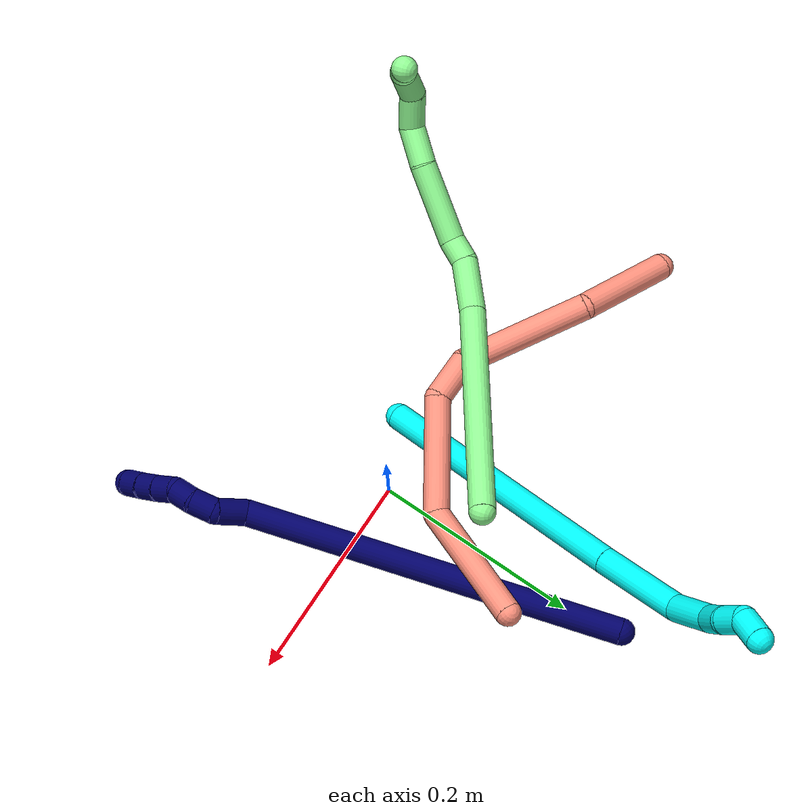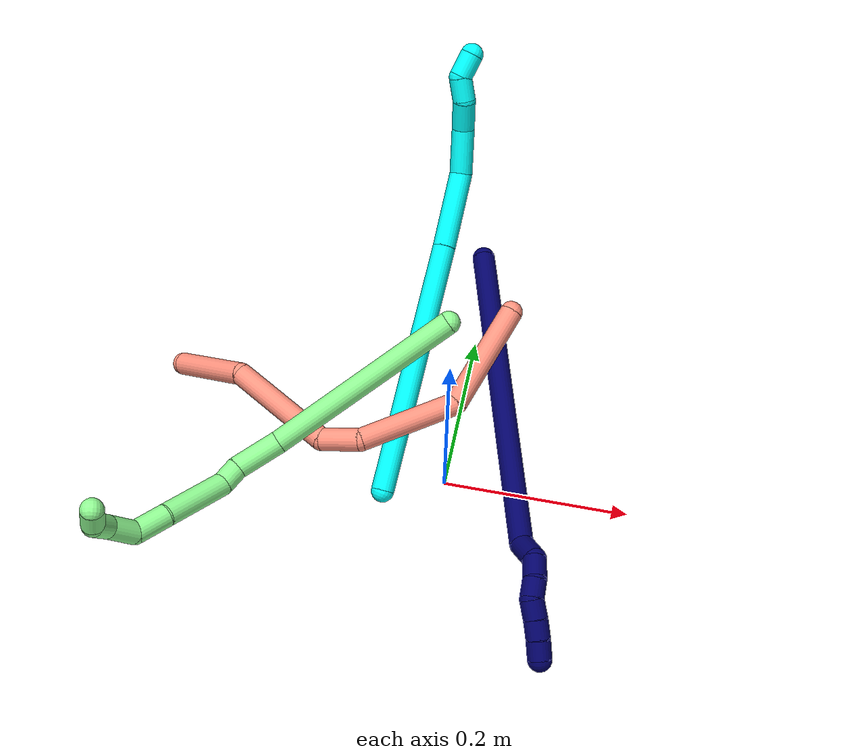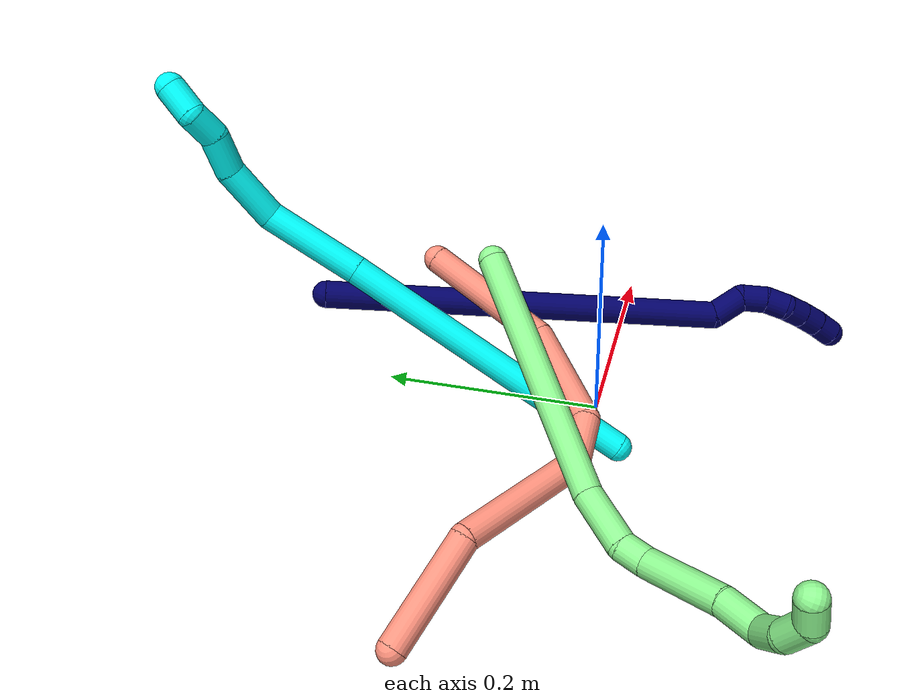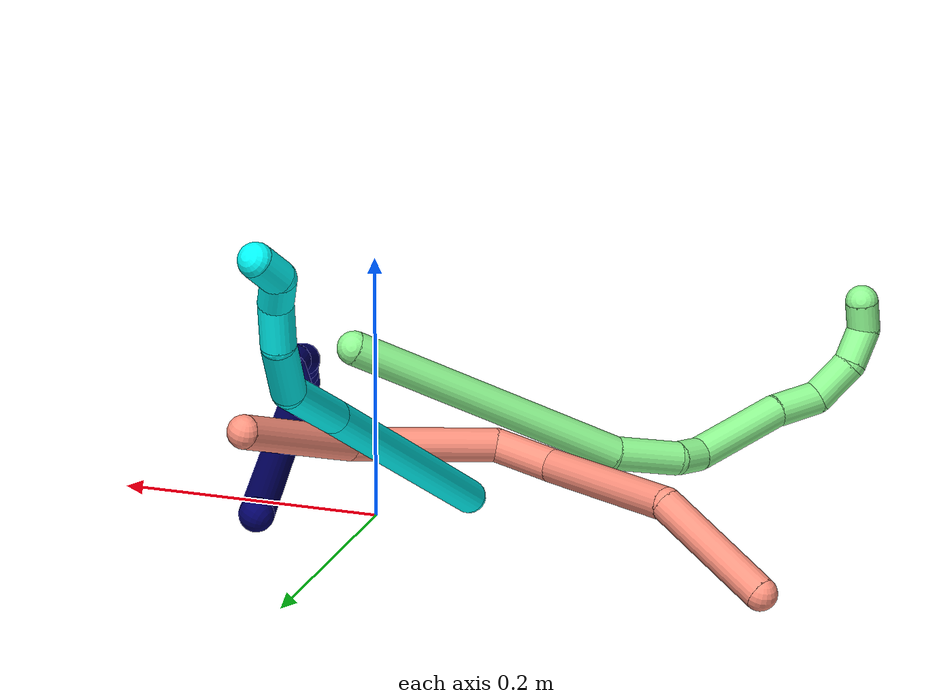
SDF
<sdf version="1.7">
 <world name="default">
  <model name="photoneo_s_sensor">
   <static>1</static>
   <pose>0 0 2 1.57079 1.57079 3.14159</pose>
   <link name="link">
    <inertial><mass>0.1</mass></inertial>
    <sensor name="sensor" type="depth">
     <update_rate>30</update_rate>
     <camera>
      <horizontal_fov>1.22</horizontal_fov>
      <image><width>1920</width><height>1200</height><format>B8G8R8</format></image>
      <clip><near>0.1</near><far>4</far></clip>
      <depth_camera><output>points</output></depth_camera>
     </camera>
     <plugin name="camera_plugin" filename="libgazebo_ros_depth_camera.so">
      <baseline>0.2</baseline>
      <alwaysOn>1</alwaysOn>
      <updateRate>0.0</updateRate>
      <cameraName>camera_ir</cameraName>
      <imageTopicName>/camera/color/image_raw</imageTopicName>
      <cameraInfoTopicName>/camera/color/camera_info</cameraInfoTopicName>
      <depthImageTopicName>/camera/depth/image_raw</depthImageTopicName>
      <depthImageCameraInfoTopicName>/camera/depth/camera_info</depthImageCameraInfoTopicName>
      <pointCloudTopicName>/camera/depth/points</pointCloudTopicName>
      <frameName>fr_optical</frameName>
      <pointCloudCutoff>0.1</pointCloudCutoff>
      <pointCloudCutoffMax>2.0</pointCloudCutoffMax>
      <distortionK1>0</distortionK1>
      <distortionK2>0</distortionK2>
      <distortionK3>0</distortionK3>
      <distortionT1>0</distortionT1>
      <distortionT2>0</distortionT2>
      <CxPrime>0</CxPrime>
      <Cx>0</Cx>
      <Cy>0</Cy>
      <focalLength>0</focalLength>
      <hackBaseline>0</hackBaseline>
     </plugin>
    </sensor>
   </link>
  </model>
  <model name="bin">
   <static>1</static>
   <link name="bottom">
    <collision name="collision-bottom">
     <pose>0 0 -0.01 0 -0 0</pose>
     <geometry><box><size>0.8 0.6 0.02</size></box></geometry>
     <surface>
      <friction><ode><mu>100</mu><mu2>100</mu2></ode></friction>
      <contact><collide_bitmask>65535</collide_bitmask></contact>
     </surface>
    </collision>
   </link>
   <link name="west_wall">
    <collision name="collision-west_wall">
     <pose>-0.41 0 0.1 0 -0 0</pose>
     <geometry><box><size>0.02 0.6 0.2</size></box></geometry>
     <surface>
      <friction><ode><mu>100</mu><mu2>100</mu2></ode></friction>
      <contact><collide_bitmask>65535</collide_bitmask></contact>
     </surface>
    </collision>
   </link>
   <link name="east_wall">
    <collision name="collision-east_wall">
     <pose>0.41 0 0.1 0 -0 0</pose>
     <geometry><box><size>0.02 0.6 0.2</size></box></geometry>
     <surface>
      <friction><ode><mu>100</mu><mu2>100</mu2></ode></friction>
      <contact><collide_bitmask>65535</collide_bitmask></contact>
     </surface>
    </collision>
   </link>
   <link name="south_wall">
    <collision name="collision-south_wall">
     <pose>0 -0.31 0.1 0 -0 0</pose>
     <geometry><box><size>0.8 0.02 0.2</size></box></geometry>
     <surface>
      <friction><ode><mu>100</mu><mu2>100</mu2></ode></friction>
      <contact><collide_bitmask>65535</collide_bitmask></contact>
     </surface>
    </collision>
   </link>
   <link name="north_wall">
    <collision name="collision-north_wall">
     <pose>0 0.31 0.1 0 -0 0</pose>
     <geometry><box><size>0.8 0.02 0.2</size></box></geometry>
     <surface>
      <friction><ode><mu>100</mu><mu2>100</mu2></ode></friction>
      <contact><collide_bitmask>65535</collide_bitmask></contact>
     </surface>
    </collision>
   </link>
  </model>
  <model name="3">
   <static>0</static>
   <link name="3">
    <collision name="collision-cylinder-e_1_1_4">
     <pose>0.001081 0.023082 0.136217 -0.167853 0.007823 -0.000658</pose>
     <geometry><cylinder><radius>0.0125</radius><length>0.276325</length></cylinder></geometry>
     <surface>
      <friction><ode><mu>1.16</mu><mu2>1.16</mu2><slip1>0</slip1><slip2>0</slip2></ode></friction>
      <contact><ode><kp>1e+06</kp><kd>1</kd><max_vel>0</max_vel><min_depth>0.001</min_depth></ode></contact>
     </surface>
    </collision>
    <visual name="visual-cylinder-e_1_1_4">
     <pose>0.001081 0.023082 0.136217 -0.167853 0.007823 -0.000658</pose>
     <geometry><cylinder><radius>0.0125</radius><length>0.276325</length></cylinder></geometry>
     <material><ambient>0.003922 1 0.996078 1</ambient></material>
    </visual>
    <collision name="collision-cylinder-e_2_4_5">
     <pose>0.003408 0.054255 0.31452 -0.189957 0.029061 -0.002769</pose>
     <geometry><cylinder><radius>0.0125</radius><length>0.085752</length></cylinder></geometry>
     <surface>
      <friction><ode><mu>1.16</mu><mu2>1.16</mu2><slip1>0</slip1><slip2>0</slip2></ode></friction>
      <contact><ode><kp>1e+06</kp><kd>1</kd><max_vel>0</max_vel><min_depth>0.001</min_depth></ode></contact>
     </surface>
    </collision>
    <visual name="visual-cylinder-e_2_4_5">
     <pose>0.003408 0.054255 0.31452 -0.189957 0.029061 -0.002769</pose>
     <geometry><cylinder><radius>0.0125</radius><length>0.085752</length></cylinder></geometry>
     <material><ambient>0.003922 1 0.996078 1</ambient></material>
    </visual>
    <collision name="collision-cylinder-e_3_5_6">
     <pose>-0.00579 0.070483 0.378477 -0.356143 -0.420816 0.076837</pose>
     <geometry><cylinder><radius>0.0125</radius><length>0.05113</length></cylinder></geometry>
     <surface>
      <friction><ode><mu>1.16</mu><mu2>1.16</mu2><slip1>0</slip1><slip2>0</slip2></ode></friction>
      <contact><ode><kp>1e+06</kp><kd>1</kd><max_vel>0</max_vel><min_depth>0.001</min_depth></ode></contact>
     </surface>
    </collision>
    <visual name="visual-cylinder-e_3_5_6">
     <pose>-0.00579 0.070483 0.378477 -0.356143 -0.420816 0.076837</pose>
     <geometry><cylinder><radius>0.0125</radius><length>0.05113</length></cylinder></geometry>
     <material><ambient>0.003922 1 0.996078 1</ambient></material>
    </visual>
    <collision name="collision-cylinder-e_4_6_7">
     <pose>-0.027916 0.083025 0.411656 -0.371492 -0.766363 0.151208</pose>
     <geometry><cylinder><radius>0.0125</radius><length>0.033691</length></cylinder></geometry>
     <surface>
      <friction><ode><mu>1.16</mu><mu2>1.16</mu2><slip1>0</slip1><slip2>0</slip2></ode></friction>
      <contact><ode><kp>1e+06</kp><kd>1</kd><max_vel>0</max_vel><min_depth>0.001</min_depth></ode></contact>
     </surface>
    </collision>
    <visual name="visual-cylinder-e_4_6_7">
     <pose>-0.027916 0.083025 0.411656 -0.371492 -0.766363 0.151208</pose>
     <geometry><cylinder><radius>0.0125</radius><length>0.033691</length></cylinder></geometry>
     <material><ambient>0.003922 1 0.996078 1</ambient></material>
    </visual>
    <collision name="collision-cylinder-e_5_7_8">
     <pose>-0.045348 0.093932 0.432697 -0.588923 -0.456568 0.140691</pose>
     <geometry><cylinder><radius>0.0125</radius><length>0.026081</length></cylinder></geometry>
     <surface>
      <friction><ode><mu>1.16</mu><mu2>1.16</mu2><slip1>0</slip1><slip2>0</slip2></ode></friction>
      <contact><ode><kp>1e+06</kp><kd>1</kd><max_vel>0</max_vel><min_depth>0.001</min_depth></ode></contact>
     </surface>
    </collision>
    <visual name="visual-cylinder-e_5_7_8">
     <pose>-0.045348 0.093932 0.432697 -0.588923 -0.456568 0.140691</pose>
     <geometry><cylinder><radius>0.0125</radius><length>0.026081</length></cylinder></geometry>
     <material><ambient>0.003922 1 0.996078 1</ambient></material>
    </visual>
    <collision name="collision-cylinder-e_6_8_2">
     <pose>-0.053761 0.099402 0.455635 0.077965 -0.19842 -0.007764</pose>
     <geometry><cylinder><radius>0.0125</radius><length>0.027021</length></cylinder></geometry>
     <surface>
      <friction><ode><mu>1.16</mu><mu2>1.16</mu2><slip1>0</slip1><slip2>0</slip2></ode></friction>
      <contact><ode><kp>1e+06</kp><kd>1</kd><max_vel>0</max_vel><min_depth>0.001</min_depth></ode></contact>
     </surface>
    </collision>
    <visual name="visual-cylinder-e_6_8_2">
     <pose>-0.053761 0.099402 0.455635 0.077965 -0.19842 -0.007764</pose>
     <geometry><cylinder><radius>0.0125</radius><length>0.027021</length></cylinder></geometry>
     <material><ambient>0.003922 1 0.996078 1</ambient></material>
    </visual>
    <collision name="collision-sphere-2">
     <pose>-0.056424 0.09837 0.46884 0 -0 0</pose>
     <geometry><sphere><radius>0.0125</radius></sphere></geometry>
     <surface>
      <friction><ode><mu>1.16</mu><mu2>1.16</mu2><slip1>0</slip1><slip2>0</slip2></ode></friction>
      <contact><ode><kp>1e+06</kp><kd>1</kd><max_vel>0</max_vel><min_depth>0.001</min_depth></ode></contact>
     </surface>
    </collision>
    <visual name="visual-sphere-2">
     <pose>-0.056424 0.09837 0.46884 0 -0 0</pose>
     <geometry><sphere><radius>0.0125</radius></sphere></geometry>
     <material><ambient>0.003922 1 0.996078 1</ambient></material>
    </visual>
    <collision name="collision-sphere-4">
     <pose>0.002162 0.046163 0.272434 0 -0 0</pose>
     <geometry><sphere><radius>0.0125</radius></sphere></geometry>
     <surface>
      <friction><ode><mu>1.16</mu><mu2>1.16</mu2><slip1>0</slip1><slip2>0</slip2></ode></friction>
      <contact><ode><kp>1e+06</kp><kd>1</kd><max_vel>0</max_vel><min_depth>0.001</min_depth></ode></contact>
     </surface>
    </collision>
    <visual name="visual-sphere-4">
     <pose>0.002162 0.046163 0.272434 0 -0 0</pose>
     <geometry><sphere><radius>0.0125</radius></sphere></geometry>
     <material><ambient>0.003922 1 0.996078 1</ambient></material>
    </visual>
    <collision name="collision-sphere-1">
     <geometry><sphere><radius>0.0125</radius></sphere></geometry>
     <surface>
      <friction><ode><mu>1.16</mu><mu2>1.16</mu2><slip1>0</slip1><slip2>0</slip2></ode></friction>
      <contact><ode><kp>1e+06</kp><kd>1</kd><max_vel>0</max_vel><min_depth>0.001</min_depth></ode></contact>
     </surface>
    </collision>
    <visual name="visual-sphere-1">
     <geometry><sphere><radius>0.0125</radius></sphere></geometry>
     <material><ambient>0.003922 1 0.996078 1</ambient></material>
    </visual>
    <collision name="collision-sphere-8">
     <pose>-0.051098 0.100434 0.44243 0 -0 0</pose>
     <geometry><sphere><radius>0.0125</radius></sphere></geometry>
     <surface>
      <friction><ode><mu>1.16</mu><mu2>1.16</mu2><slip1>0</slip1><slip2>0</slip2></ode></friction>
      <contact><ode><kp>1e+06</kp><kd>1</kd><max_vel>0</max_vel><min_depth>0.001</min_depth></ode></contact>
     </surface>
    </collision>
    <visual name="visual-sphere-8">
     <pose>-0.051098 0.100434 0.44243 0 -0 0</pose>
     <geometry><sphere><radius>0.0125</radius></sphere></geometry>
     <material><ambient>0.003922 1 0.996078 1</ambient></material>
    </visual>
    <collision name="collision-sphere-5">
     <pose>0.004653 0.062348 0.356607 0 -0 0</pose>
     <geometry><sphere><radius>0.0125</radius></sphere></geometry>
     <surface>
      <friction><ode><mu>1.16</mu><mu2>1.16</mu2><slip1>0</slip1><slip2>0</slip2></ode></friction>
      <contact><ode><kp>1e+06</kp><kd>1</kd><max_vel>0</max_vel><min_depth>0.001</min_depth></ode></contact>
     </surface>
    </collision>
    <visual name="visual-sphere-5">
     <pose>0.004653 0.062348 0.356607 0 -0 0</pose>
     <geometry><sphere><radius>0.0125</radius></sphere></geometry>
     <material><ambient>0.003922 1 0.996078 1</ambient></material>
    </visual>
    <collision name="collision-sphere-6">
     <pose>-0.016233 0.078619 0.400347 0 -0 0</pose>
     <geometry><sphere><radius>0.0125</radius></sphere></geometry>
     <surface>
      <friction><ode><mu>1.16</mu><mu2>1.16</mu2><slip1>0</slip1><slip2>0</slip2></ode></friction>
      <contact><ode><kp>1e+06</kp><kd>1</kd><max_vel>0</max_vel><min_depth>0.001</min_depth></ode></contact>
     </surface>
    </collision>
    <visual name="visual-sphere-6">
     <pose>-0.016233 0.078619 0.400347 0 -0 0</pose>
     <geometry><sphere><radius>0.0125</radius></sphere></geometry>
     <material><ambient>0.003922 1 0.996078 1</ambient></material>
    </visual>
    <collision name="collision-sphere-7">
     <pose>-0.039599 0.08743 0.422964 0 -0 0</pose>
     <geometry><sphere><radius>0.0125</radius></sphere></geometry>
     <surface>
      <friction><ode><mu>1.16</mu><mu2>1.16</mu2><slip1>0</slip1><slip2>0</slip2></ode></friction>
      <contact><ode><kp>1e+06</kp><kd>1</kd><max_vel>0</max_vel><min_depth>0.001</min_depth></ode></contact>
     </surface>
    </collision>
    <visual name="visual-sphere-7">
     <pose>-0.039599 0.08743 0.422964 0 -0 0</pose>
     <geometry><sphere><radius>0.0125</radius></sphere></geometry>
     <material><ambient>0.003922 1 0.996078 1</ambient></material>
    </visual>
    <inertial>
     <pose>-0.006562 0.045135 0.242857 0 -0 0</pose>
     <mass>0.5</mass>
     <inertia>
      <ixx>0.001841</ixx>
      <ixy>0</ixy>
      <ixz>0</ixz>
      <iyy>0.001829</iyy>
      <iyz>0</iyz>
      <izz>-0.000281</izz>
     </inertia>
    </inertial>
   </link>
   <pose>-0.0625 -0.030805 0.011488 0.34635 1.02251 1.6962</pose>
  </model>
  <model name="7">
   <static>0</static>
   <link name="7">
    <collision name="collision-cylinder-e_1_1_4">
     <pose>-0.041882 -0.156491 0.084164 1.07736 -0.231481 -0.138739</pose>
     <geometry><cylinder><radius>0.0125</radius><length>0.365115</length></cylinder></geometry>
     <surface>
      <friction><ode><mu>1.16</mu><mu2>1.16</mu2><slip1>0</slip1><slip2>0</slip2></ode></friction>
      <contact><ode><kp>1e+06</kp><kd>1</kd><max_vel>0</max_vel><min_depth>0.001</min_depth></ode></contact>
     </surface>
    </collision>
    <visual name="visual-cylinder-e_1_1_4">
     <pose>-0.041882 -0.156491 0.084164 1.07736 -0.231481 -0.138739</pose>
     <geometry><cylinder><radius>0.0125</radius><length>0.365115</length></cylinder></geometry>
     <material><ambient>0.003922 0 0.403922 1</ambient></material>
    </visual>
    <collision name="collision-cylinder-e_2_4_5">
     <pose>-0.090574 -0.319083 0.180748 0.456545 -0.457333 -0.108035</pose>
     <geometry><cylinder><radius>0.0125</radius><length>0.030845</length></cylinder></geometry>
     <surface>
      <friction><ode><mu>1.16</mu><mu2>1.16</mu2><slip1>0</slip1><slip2>0</slip2></ode></friction>
      <contact><ode><kp>1e+06</kp><kd>1</kd><max_vel>0</max_vel><min_depth>0.001</min_depth></ode></contact>
     </surface>
    </collision>
    <visual name="visual-cylinder-e_2_4_5">
     <pose>-0.090574 -0.319083 0.180748 0.456545 -0.457333 -0.108035</pose>
     <geometry><cylinder><radius>0.0125</radius><length>0.030845</length></cylinder></geometry>
     <material><ambient>0.003922 0 0.403922 1</ambient></material>
    </visual>
    <collision name="collision-cylinder-e_3_5_6">
     <pose>-0.101154 -0.335247 0.197639 1.15276 -0.329811 -0.215507</pose>
     <geometry><cylinder><radius>0.0125</radius><length>0.023278</length></cylinder></geometry>
     <surface>
      <friction><ode><mu>1.16</mu><mu2>1.16</mu2><slip1>0</slip1><slip2>0</slip2></ode></friction>
      <contact><ode><kp>1e+06</kp><kd>1</kd><max_vel>0</max_vel><min_depth>0.001</min_depth></ode></contact>
     </surface>
    </collision>
    <visual name="visual-cylinder-e_3_5_6">
     <pose>-0.101154 -0.335247 0.197639 1.15276 -0.329811 -0.215507</pose>
     <geometry><cylinder><radius>0.0125</radius><length>0.023278</length></cylinder></geometry>
     <material><ambient>0.003922 0 0.403922 1</ambient></material>
    </visual>
    <collision name="collision-cylinder-e_4_6_7">
     <pose>-0.107024 -0.355217 0.203835 1.39833 -0.205976 -0.173376</pose>
     <geometry><cylinder><radius>0.0125</radius><length>0.020546</length></cylinder></geometry>
     <surface>
      <friction><ode><mu>1.16</mu><mu2>1.16</mu2><slip1>0</slip1><slip2>0</slip2></ode></friction>
      <contact><ode><kp>1e+06</kp><kd>1</kd><max_vel>0</max_vel><min_depth>0.001</min_depth></ode></contact>
     </surface>
    </collision>
    <visual name="visual-cylinder-e_4_6_7">
     <pose>-0.107024 -0.355217 0.203835 1.39833 -0.205976 -0.173376</pose>
     <geometry><cylinder><radius>0.0125</radius><length>0.020546</length></cylinder></geometry>
     <material><ambient>0.003922 0 0.403922 1</ambient></material>
    </visual>
    <collision name="collision-cylinder-e_5_7_8">
     <pose>-0.106674 -0.374288 0.20878 1.23297 0.247175 0.175597</pose>
     <geometry><cylinder><radius>0.0125</radius><length>0.020035</length></cylinder></geometry>
     <surface>
      <friction><ode><mu>1.16</mu><mu2>1.16</mu2><slip1>0</slip1><slip2>0</slip2></ode></friction>
      <contact><ode><kp>1e+06</kp><kd>1</kd><max_vel>0</max_vel><min_depth>0.001</min_depth></ode></contact>
     </surface>
    </collision>
    <visual name="visual-cylinder-e_5_7_8">
     <pose>-0.106674 -0.374288 0.20878 1.23297 0.247175 0.175597</pose>
     <geometry><cylinder><radius>0.0125</radius><length>0.020035</length></cylinder></geometry>
     <material><ambient>0.003922 0 0.403922 1</ambient></material>
    </visual>
    <collision name="collision-cylinder-e_6_8_9">
     <pose>-0.101836 -0.392845 0.214513 1.30926 0.240819 0.185204</pose>
     <geometry><cylinder><radius>0.0125</radius><length>0.020025</length></cylinder></geometry>
     <surface>
      <friction><ode><mu>1.16</mu><mu2>1.16</mu2><slip1>0</slip1><slip2>0</slip2></ode></friction>
      <contact><ode><kp>1e+06</kp><kd>1</kd><max_vel>0</max_vel><min_depth>0.001</min_depth></ode></contact>
     </surface>
    </collision>
    <visual name="visual-cylinder-e_6_8_9">
     <pose>-0.101836 -0.392845 0.214513 1.30926 0.240819 0.185204</pose>
     <geometry><cylinder><radius>0.0125</radius><length>0.020025</length></cylinder></geometry>
     <material><ambient>0.003922 0 0.403922 1</ambient></material>
    </visual>
    <collision name="collision-cylinder-e_7_9_2">
     <pose>-0.096709 -0.411774 0.218796 1.38746 0.275218 0.229323</pose>
     <geometry><cylinder><radius>0.0125</radius><length>0.020156</length></cylinder></geometry>
     <surface>
      <friction><ode><mu>1.16</mu><mu2>1.16</mu2><slip1>0</slip1><slip2>0</slip2></ode></friction>
      <contact><ode><kp>1e+06</kp><kd>1</kd><max_vel>0</max_vel><min_depth>0.001</min_depth></ode></contact>
     </surface>
    </collision>
    <visual name="visual-cylinder-e_7_9_2">
     <pose>-0.096709 -0.411774 0.218796 1.38746 0.275218 0.229323</pose>
     <geometry><cylinder><radius>0.0125</radius><length>0.020156</length></cylinder></geometry>
     <material><ambient>0.003922 0 0.403922 1</ambient></material>
    </visual>
    <collision name="collision-sphere-2">
     <pose>-0.09397 -0.42131 0.220564 0 -0 0</pose>
     <geometry><sphere><radius>0.0125</radius></sphere></geometry>
     <surface>
      <friction><ode><mu>1.16</mu><mu2>1.16</mu2><slip1>0</slip1><slip2>0</slip2></ode></friction>
      <contact><ode><kp>1e+06</kp><kd>1</kd><max_vel>0</max_vel><min_depth>0.001</min_depth></ode></contact>
     </surface>
    </collision>
    <visual name="visual-sphere-2">
     <pose>-0.09397 -0.42131 0.220564 0 -0 0</pose>
     <geometry><sphere><radius>0.0125</radius></sphere></geometry>
     <material><ambient>0.003922 0 0.403922 1</ambient></material>
    </visual>
    <collision name="collision-sphere-9">
     <pose>-0.099448 -0.402237 0.217027 0 -0 0</pose>
     <geometry><sphere><radius>0.0125</radius></sphere></geometry>
     <surface>
      <friction><ode><mu>1.16</mu><mu2>1.16</mu2><slip1>0</slip1><slip2>0</slip2></ode></friction>
      <contact><ode><kp>1e+06</kp><kd>1</kd><max_vel>0</max_vel><min_depth>0.001</min_depth></ode></contact>
     </surface>
    </collision>
    <visual name="visual-sphere-9">
     <pose>-0.099448 -0.402237 0.217027 0 -0 0</pose>
     <geometry><sphere><radius>0.0125</radius></sphere></geometry>
     <material><ambient>0.003922 0 0.403922 1</ambient></material>
    </visual>
    <collision name="collision-sphere-4">
     <pose>-0.083764 -0.312983 0.168328 0 -0 0</pose>
     <geometry><sphere><radius>0.0125</radius></sphere></geometry>
     <surface>
      <friction><ode><mu>1.16</mu><mu2>1.16</mu2><slip1>0</slip1><slip2>0</slip2></ode></friction>
      <contact><ode><kp>1e+06</kp><kd>1</kd><max_vel>0</max_vel><min_depth>0.001</min_depth></ode></contact>
     </surface>
    </collision>
    <visual name="visual-sphere-4">
     <pose>-0.083764 -0.312983 0.168328 0 -0 0</pose>
     <geometry><sphere><radius>0.0125</radius></sphere></geometry>
     <material><ambient>0.003922 0 0.403922 1</ambient></material>
    </visual>
    <collision name="collision-sphere-1">
     <geometry><sphere><radius>0.0125</radius></sphere></geometry>
     <surface>
      <friction><ode><mu>1.16</mu><mu2>1.16</mu2><slip1>0</slip1><slip2>0</slip2></ode></friction>
      <contact><ode><kp>1e+06</kp><kd>1</kd><max_vel>0</max_vel><min_depth>0.001</min_depth></ode></contact>
     </surface>
    </collision>
    <visual name="visual-sphere-1">
     <geometry><sphere><radius>0.0125</radius></sphere></geometry>
     <material><ambient>0.003922 0 0.403922 1</ambient></material>
    </visual>
    <collision name="collision-sphere-8">
     <pose>-0.104224 -0.383452 0.211999 0 -0 0</pose>
     <geometry><sphere><radius>0.0125</radius></sphere></geometry>
     <surface>
      <friction><ode><mu>1.16</mu><mu2>1.16</mu2><slip1>0</slip1><slip2>0</slip2></ode></friction>
      <contact><ode><kp>1e+06</kp><kd>1</kd><max_vel>0</max_vel><min_depth>0.001</min_depth></ode></contact>
     </surface>
    </collision>
    <visual name="visual-sphere-8">
     <pose>-0.104224 -0.383452 0.211999 0 -0 0</pose>
     <geometry><sphere><radius>0.0125</radius></sphere></geometry>
     <material><ambient>0.003922 0 0.403922 1</ambient></material>
    </visual>
    <collision name="collision-sphere-5">
     <pose>-0.097384 -0.325183 0.193168 0 -0 0</pose>
     <geometry><sphere><radius>0.0125</radius></sphere></geometry>
     <surface>
      <friction><ode><mu>1.16</mu><mu2>1.16</mu2><slip1>0</slip1><slip2>0</slip2></ode></friction>
      <contact><ode><kp>1e+06</kp><kd>1</kd><max_vel>0</max_vel><min_depth>0.001</min_depth></ode></contact>
     </surface>
    </collision>
    <visual name="visual-sphere-5">
     <pose>-0.097384 -0.325183 0.193168 0 -0 0</pose>
     <geometry><sphere><radius>0.0125</radius></sphere></geometry>
     <material><ambient>0.003922 0 0.403922 1</ambient></material>
    </visual>
    <collision name="collision-sphere-6">
     <pose>-0.104923 -0.345311 0.202109 0 -0 0</pose>
     <geometry><sphere><radius>0.0125</radius></sphere></geometry>
     <surface>
      <friction><ode><mu>1.16</mu><mu2>1.16</mu2><slip1>0</slip1><slip2>0</slip2></ode></friction>
      <contact><ode><kp>1e+06</kp><kd>1</kd><max_vel>0</max_vel><min_depth>0.001</min_depth></ode></contact>
     </surface>
    </collision>
    <visual name="visual-sphere-6">
     <pose>-0.104923 -0.345311 0.202109 0 -0 0</pose>
     <geometry><sphere><radius>0.0125</radius></sphere></geometry>
     <material><ambient>0.003922 0 0.403922 1</ambient></material>
    </visual>
    <collision name="collision-sphere-7">
     <pose>-0.109125 -0.365124 0.205561 0 -0 0</pose>
     <geometry><sphere><radius>0.0125</radius></sphere></geometry>
     <surface>
      <friction><ode><mu>1.16</mu><mu2>1.16</mu2><slip1>0</slip1><slip2>0</slip2></ode></friction>
      <contact><ode><kp>1e+06</kp><kd>1</kd><max_vel>0</max_vel><min_depth>0.001</min_depth></ode></contact>
     </surface>
    </collision>
    <visual name="visual-sphere-7">
     <pose>-0.109125 -0.365124 0.205561 0 -0 0</pose>
     <geometry><sphere><radius>0.0125</radius></sphere></geometry>
     <material><ambient>0.003922 0 0.403922 1</ambient></material>
    </visual>
    <inertial>
     <pose>-0.05753 -0.211494 0.115964 0 -0 0</pose>
     <mass>0.5</mass>
     <inertia>
      <ixx>0.003379</ixx>
      <ixy>0</ixy>
      <ixz>0</ixz>
      <iyy>0.001448</iyy>
      <iyz>0</iyz>
      <izz>0.00445</izz>
     </inertia>
    </inertial>
   </link>
   <pose>-0.003797 0.254913 0.091086 0.978555 0.896804 0.803215</pose>
  </model>
  <model name="13">
   <static>0</static>
   <link name="13">
    <collision name="collision-cylinder-e_1_1_4">
     <pose>-0.091421 0.025158 -0.058101 -2.73296 -0.965088 2.38826</pose>
     <geometry><cylinder><radius>0.0125</radius><length>0.222409</length></cylinder></geometry>
     <surface>
      <friction><ode><mu>1.16</mu><mu2>1.16</mu2><slip1>0</slip1><slip2>0</slip2></ode></friction>
      <contact><ode><kp>1e+06</kp><kd>1</kd><max_vel>0</max_vel><min_depth>0.001</min_depth></ode></contact>
     </surface>
    </collision>
    <visual name="visual-cylinder-e_1_1_4">
     <pose>-0.091421 0.025158 -0.058101 -2.73296 -0.965088 2.38826</pose>
     <geometry><cylinder><radius>0.0125</radius><length>0.222409</length></cylinder></geometry>
     <material><ambient>0.564706 0.984314 0.572549 1</ambient></material>
    </visual>
    <collision name="collision-cylinder-e_2_4_5">
     <pose>-0.20468 0.049191 -0.130638 3.06378 -0.985264 -2.99681</pose>
     <geometry><cylinder><radius>0.0125</radius><length>0.052405</length></cylinder></geometry>
     <surface>
      <friction><ode><mu>1.16</mu><mu2>1.16</mu2><slip1>0</slip1><slip2>0</slip2></ode></friction>
      <contact><ode><kp>1e+06</kp><kd>1</kd><max_vel>0</max_vel><min_depth>0.001</min_depth></ode></contact>
     </surface>
    </collision>
    <visual name="visual-cylinder-e_2_4_5">
     <pose>-0.20468 0.049191 -0.130638 3.06378 -0.985264 -2.99681</pose>
     <geometry><cylinder><radius>0.0125</radius><length>0.052405</length></cylinder></geometry>
     <material><ambient>0.564706 0.984314 0.572549 1</ambient></material>
    </visual>
    <collision name="collision-cylinder-e_3_5_6">
     <pose>-0.233448 0.045269 -0.154258 2.84605 -0.625347 -2.27855</pose>
     <geometry><cylinder><radius>0.0125</radius><length>0.023678</length></cylinder></geometry>
     <surface>
      <friction><ode><mu>1.16</mu><mu2>1.16</mu2><slip1>0</slip1><slip2>0</slip2></ode></friction>
      <contact><ode><kp>1e+06</kp><kd>1</kd><max_vel>0</max_vel><min_depth>0.001</min_depth></ode></contact>
     </surface>
    </collision>
    <visual name="visual-cylinder-e_3_5_6">
     <pose>-0.233448 0.045269 -0.154258 2.84605 -0.625347 -2.27855</pose>
     <geometry><cylinder><radius>0.0125</radius><length>0.023678</length></cylinder></geometry>
     <material><ambient>0.564706 0.984314 0.572549 1</ambient></material>
    </visual>
    <collision name="collision-cylinder-e_4_6_7">
     <pose>-0.265586 0.022458 -0.184009 2.36982 -0.720694 -1.4956</pose>
     <geometry><cylinder><radius>0.0125</radius><length>0.076397</length></cylinder></geometry>
     <surface>
      <friction><ode><mu>1.16</mu><mu2>1.16</mu2><slip1>0</slip1><slip2>0</slip2></ode></friction>
      <contact><ode><kp>1e+06</kp><kd>1</kd><max_vel>0</max_vel><min_depth>0.001</min_depth></ode></contact>
     </surface>
    </collision>
    <visual name="visual-cylinder-e_4_6_7">
     <pose>-0.265586 0.022458 -0.184009 2.36982 -0.720694 -1.4956</pose>
     <geometry><cylinder><radius>0.0125</radius><length>0.076397</length></cylinder></geometry>
     <material><ambient>0.564706 0.984314 0.572549 1</ambient></material>
    </visual>
    <collision name="collision-cylinder-e_5_7_8">
     <pose>-0.305044 -0.004796 -0.215048 2.53675 -0.841783 -1.92422</pose>
     <geometry><cylinder><radius>0.0125</radius><length>0.038214</length></cylinder></geometry>
     <surface>
      <friction><ode><mu>1.16</mu><mu2>1.16</mu2><slip1>0</slip1><slip2>0</slip2></ode></friction>
      <contact><ode><kp>1e+06</kp><kd>1</kd><max_vel>0</max_vel><min_depth>0.001</min_depth></ode></contact>
     </surface>
    </collision>
    <visual name="visual-cylinder-e_5_7_8">
     <pose>-0.305044 -0.004796 -0.215048 2.53675 -0.841783 -1.92422</pose>
     <geometry><cylinder><radius>0.0125</radius><length>0.038214</length></cylinder></geometry>
     <material><ambient>0.564706 0.984314 0.572549 1</ambient></material>
    </visual>
    <collision name="collision-cylinder-e_6_8_9">
     <pose>-0.33045 -0.025819 -0.225031 1.5355 -0.680017 -0.658121</pose>
     <geometry><cylinder><radius>0.0125</radius><length>0.035482</length></cylinder></geometry>
     <surface>
      <friction><ode><mu>1.16</mu><mu2>1.16</mu2><slip1>0</slip1><slip2>0</slip2></ode></friction>
      <contact><ode><kp>1e+06</kp><kd>1</kd><max_vel>0</max_vel><min_depth>0.001</min_depth></ode></contact>
     </surface>
    </collision>
    <visual name="visual-cylinder-e_6_8_9">
     <pose>-0.33045 -0.025819 -0.225031 1.5355 -0.680017 -0.658121</pose>
     <geometry><cylinder><radius>0.0125</radius><length>0.035482</length></cylinder></geometry>
     <material><ambient>0.564706 0.984314 0.572549 1</ambient></material>
    </visual>
    <collision name="collision-cylinder-e_7_9_10">
     <pose>-0.345472 -0.053315 -0.226128 1.68581 -0.273174 -0.306058</pose>
     <geometry><cylinder><radius>0.0125</radius><length>0.028665</length></cylinder></geometry>
     <surface>
      <friction><ode><mu>1.16</mu><mu2>1.16</mu2><slip1>0</slip1><slip2>0</slip2></ode></friction>
      <contact><ode><kp>1e+06</kp><kd>1</kd><max_vel>0</max_vel><min_depth>0.001</min_depth></ode></contact>
     </surface>
    </collision>
    <visual name="visual-cylinder-e_7_9_10">
     <pose>-0.345472 -0.053315 -0.226128 1.68581 -0.273174 -0.306058</pose>
     <geometry><cylinder><radius>0.0125</radius><length>0.028665</length></cylinder></geometry>
     <material><ambient>0.564706 0.984314 0.572549 1</ambient></material>
    </visual>
    <collision name="collision-cylinder-e_8_10_2">
     <pose>-0.347847 -0.076925 -0.222312 1.07153 0.13153 0.07816</pose>
     <geometry><cylinder><radius>0.0125</radius><length>0.02275</length></cylinder></geometry>
     <surface>
      <friction><ode><mu>1.16</mu><mu2>1.16</mu2><slip1>0</slip1><slip2>0</slip2></ode></friction>
      <contact><ode><kp>1e+06</kp><kd>1</kd><max_vel>0</max_vel><min_depth>0.001</min_depth></ode></contact>
     </surface>
    </collision>
    <visual name="visual-cylinder-e_8_10_2">
     <pose>-0.347847 -0.076925 -0.222312 1.07153 0.13153 0.07816</pose>
     <geometry><cylinder><radius>0.0125</radius><length>0.02275</length></cylinder></geometry>
     <material><ambient>0.564706 0.984314 0.572549 1</ambient></material>
    </visual>
    <collision name="collision-sphere-2">
     <pose>-0.346355 -0.086825 -0.216913 0 -0 0</pose>
     <geometry><sphere><radius>0.0125</radius></sphere></geometry>
     <surface>
      <friction><ode><mu>1.16</mu><mu2>1.16</mu2><slip1>0</slip1><slip2>0</slip2></ode></friction>
      <contact><ode><kp>1e+06</kp><kd>1</kd><max_vel>0</max_vel><min_depth>0.001</min_depth></ode></contact>
     </surface>
    </collision>
    <visual name="visual-sphere-2">
     <pose>-0.346355 -0.086825 -0.216913 0 -0 0</pose>
     <geometry><sphere><radius>0.0125</radius></sphere></geometry>
     <material><ambient>0.564706 0.984314 0.572549 1</ambient></material>
    </visual>
    <collision name="collision-sphere-10">
     <pose>-0.349339 -0.067024 -0.227712 0 -0 0</pose>
     <geometry><sphere><radius>0.0125</radius></sphere></geometry>
     <surface>
      <friction><ode><mu>1.16</mu><mu2>1.16</mu2><slip1>0</slip1><slip2>0</slip2></ode></friction>
      <contact><ode><kp>1e+06</kp><kd>1</kd><max_vel>0</max_vel><min_depth>0.001</min_depth></ode></contact>
     </surface>
    </collision>
    <visual name="visual-sphere-10">
     <pose>-0.349339 -0.067024 -0.227712 0 -0 0</pose>
     <geometry><sphere><radius>0.0125</radius></sphere></geometry>
     <material><ambient>0.564706 0.984314 0.572549 1</ambient></material>
    </visual>
    <collision name="collision-sphere-9">
     <pose>-0.341606 -0.039605 -0.224544 0 -0 0</pose>
     <geometry><sphere><radius>0.0125</radius></sphere></geometry>
     <surface>
      <friction><ode><mu>1.16</mu><mu2>1.16</mu2><slip1>0</slip1><slip2>0</slip2></ode></friction>
      <contact><ode><kp>1e+06</kp><kd>1</kd><max_vel>0</max_vel><min_depth>0.001</min_depth></ode></contact>
     </surface>
    </collision>
    <visual name="visual-sphere-9">
     <pose>-0.341606 -0.039605 -0.224544 0 -0 0</pose>
     <geometry><sphere><radius>0.0125</radius></sphere></geometry>
     <material><ambient>0.564706 0.984314 0.572549 1</ambient></material>
    </visual>
    <collision name="collision-sphere-4">
     <pose>-0.182842 0.050316 -0.116201 0 -0 0</pose>
     <geometry><sphere><radius>0.0125</radius></sphere></geometry>
     <surface>
      <friction><ode><mu>1.16</mu><mu2>1.16</mu2><slip1>0</slip1><slip2>0</slip2></ode></friction>
      <contact><ode><kp>1e+06</kp><kd>1</kd><max_vel>0</max_vel><min_depth>0.001</min_depth></ode></contact>
     </surface>
    </collision>
    <visual name="visual-sphere-4">
     <pose>-0.182842 0.050316 -0.116201 0 -0 0</pose>
     <geometry><sphere><radius>0.0125</radius></sphere></geometry>
     <material><ambient>0.564706 0.984314 0.572549 1</ambient></material>
    </visual>
    <collision name="collision-sphere-1">
     <geometry><sphere><radius>0.0125</radius></sphere></geometry>
     <surface>
      <friction><ode><mu>1.16</mu><mu2>1.16</mu2><slip1>0</slip1><slip2>0</slip2></ode></friction>
      <contact><ode><kp>1e+06</kp><kd>1</kd><max_vel>0</max_vel><min_depth>0.001</min_depth></ode></contact>
     </surface>
    </collision>
    <visual name="visual-sphere-1">
     <geometry><sphere><radius>0.0125</radius></sphere></geometry>
     <material><ambient>0.564706 0.984314 0.572549 1</ambient></material>
    </visual>
    <collision name="collision-sphere-8">
     <pose>-0.319295 -0.012033 -0.225518 0 -0 0</pose>
     <geometry><sphere><radius>0.0125</radius></sphere></geometry>
     <surface>
      <friction><ode><mu>1.16</mu><mu2>1.16</mu2><slip1>0</slip1><slip2>0</slip2></ode></friction>
      <contact><ode><kp>1e+06</kp><kd>1</kd><max_vel>0</max_vel><min_depth>0.001</min_depth></ode></contact>
     </surface>
    </collision>
    <visual name="visual-sphere-8">
     <pose>-0.319295 -0.012033 -0.225518 0 -0 0</pose>
     <geometry><sphere><radius>0.0125</radius></sphere></geometry>
     <material><ambient>0.564706 0.984314 0.572549 1</ambient></material>
    </visual>
    <collision name="collision-sphere-5">
     <pose>-0.226517 0.048065 -0.145075 0 -0 0</pose>
     <geometry><sphere><radius>0.0125</radius></sphere></geometry>
     <surface>
      <friction><ode><mu>1.16</mu><mu2>1.16</mu2><slip1>0</slip1><slip2>0</slip2></ode></friction>
      <contact><ode><kp>1e+06</kp><kd>1</kd><max_vel>0</max_vel><min_depth>0.001</min_depth></ode></contact>
     </surface>
    </collision>
    <visual name="visual-sphere-5">
     <pose>-0.226517 0.048065 -0.145075 0 -0 0</pose>
     <geometry><sphere><radius>0.0125</radius></sphere></geometry>
     <material><ambient>0.564706 0.984314 0.572549 1</ambient></material>
    </visual>
    <collision name="collision-sphere-6">
     <pose>-0.240378 0.042474 -0.16344 0 -0 0</pose>
     <geometry><sphere><radius>0.0125</radius></sphere></geometry>
     <surface>
      <friction><ode><mu>1.16</mu><mu2>1.16</mu2><slip1>0</slip1><slip2>0</slip2></ode></friction>
      <contact><ode><kp>1e+06</kp><kd>1</kd><max_vel>0</max_vel><min_depth>0.001</min_depth></ode></contact>
     </surface>
    </collision>
    <visual name="visual-sphere-6">
     <pose>-0.240378 0.042474 -0.16344 0 -0 0</pose>
     <geometry><sphere><radius>0.0125</radius></sphere></geometry>
     <material><ambient>0.564706 0.984314 0.572549 1</ambient></material>
    </visual>
    <collision name="collision-sphere-7">
     <pose>-0.290793 0.002442 -0.204578 0 -0 0</pose>
     <geometry><sphere><radius>0.0125</radius></sphere></geometry>
     <surface>
      <friction><ode><mu>1.16</mu><mu2>1.16</mu2><slip1>0</slip1><slip2>0</slip2></ode></friction>
      <contact><ode><kp>1e+06</kp><kd>1</kd><max_vel>0</max_vel><min_depth>0.001</min_depth></ode></contact>
     </surface>
    </collision>
    <visual name="visual-sphere-7">
     <pose>-0.290793 0.002442 -0.204578 0 -0 0</pose>
     <geometry><sphere><radius>0.0125</radius></sphere></geometry>
     <material><ambient>0.564706 0.984314 0.572549 1</ambient></material>
    </visual>
    <inertial>
     <pose>-0.19615 0.013166 -0.130441 0 -0 0</pose>
     <mass>0.5</mass>
     <inertia><ixx>-9e-05</ixx><ixy>0</ixy><ixz>0</ixz><iyy>0.001179</iyy><iyz>0</iyz><izz>0.000615</izz></inertia>
    </inertial>
   </link>
   <pose>-0.016916 0.0917 0.161878 -1.17371 -0.054884 0.170339</pose>
  </model>
  <model name="16">
   <static>0</static>
   <link name="16">
    <collision name="collision-cylinder-e_1_1_4">
     <pose>-0.054024 -0.011735 0.023869 0.456945 -1.1133 -0.28741</pose>
     <geometry><cylinder><radius>0.0125</radius><length>0.120434</length></cylinder></geometry>
     <surface>
      <friction><ode><mu>1.16</mu><mu2>1.16</mu2><slip1>0</slip1><slip2>0</slip2></ode></friction>
      <contact><ode><kp>1e+06</kp><kd>1</kd><max_vel>0</max_vel><min_depth>0.001</min_depth></ode></contact>
     </surface>
    </collision>
    <visual name="visual-cylinder-e_1_1_4">
     <pose>-0.054024 -0.011735 0.023869 0.456945 -1.1133 -0.28741</pose>
     <geometry><cylinder><radius>0.0125</radius><length>0.120434</length></cylinder></geometry>
     <material><ambient>1 0.576471 0.494118 1</ambient></material>
    </visual>
    <collision name="collision-cylinder-e_2_4_5">
     <pose>-0.150462 -0.059043 0.045895 1.62259 -0.872239 -0.912574</pose>
     <geometry><cylinder><radius>0.0125</radius><length>0.110772</length></cylinder></geometry>
     <surface>
      <friction><ode><mu>1.16</mu><mu2>1.16</mu2><slip1>0</slip1><slip2>0</slip2></ode></friction>
      <contact><ode><kp>1e+06</kp><kd>1</kd><max_vel>0</max_vel><min_depth>0.001</min_depth></ode></contact>
     </surface>
    </collision>
    <visual name="visual-cylinder-e_2_4_5">
     <pose>-0.150462 -0.059043 0.045895 1.62259 -0.872239 -0.912574</pose>
     <geometry><cylinder><radius>0.0125</radius><length>0.110772</length></cylinder></geometry>
     <material><ambient>1 0.576471 0.494118 1</ambient></material>
    </visual>
    <collision name="collision-cylinder-e_3_5_6">
     <pose>-0.19895 -0.116097 0.043066 1.61664 -0.275322 -0.288067</pose>
     <geometry><cylinder><radius>0.0125</radius><length>0.044692</length></cylinder></geometry>
     <surface>
      <friction><ode><mu>1.16</mu><mu2>1.16</mu2><slip1>0</slip1><slip2>0</slip2></ode></friction>
      <contact><ode><kp>1e+06</kp><kd>1</kd><max_vel>0</max_vel><min_depth>0.001</min_depth></ode></contact>
     </surface>
    </collision>
    <visual name="visual-cylinder-e_3_5_6">
     <pose>-0.19895 -0.116097 0.043066 1.61664 -0.275322 -0.288067</pose>
     <geometry><cylinder><radius>0.0125</radius><length>0.044692</length></cylinder></geometry>
     <material><ambient>1 0.576471 0.494118 1</ambient></material>
    </visual>
    <collision name="collision-cylinder-e_4_6_7">
     <pose>-0.191172 -0.193289 0.017502 1.98628 0.223697 0.341274</pose>
     <geometry><cylinder><radius>0.0125</radius><length>0.124894</length></cylinder></geometry>
     <surface>
      <friction><ode><mu>1.16</mu><mu2>1.16</mu2><slip1>0</slip1><slip2>0</slip2></ode></friction>
      <contact><ode><kp>1e+06</kp><kd>1</kd><max_vel>0</max_vel><min_depth>0.001</min_depth></ode></contact>
     </surface>
    </collision>
    <visual name="visual-cylinder-e_4_6_7">
     <pose>-0.191172 -0.193289 0.017502 1.98628 0.223697 0.341274</pose>
     <geometry><cylinder><radius>0.0125</radius><length>0.124894</length></cylinder></geometry>
     <material><ambient>1 0.576471 0.494118 1</ambient></material>
    </visual>
    <collision name="collision-cylinder-e_5_7_2">
     <pose>-0.170531 -0.297766 -0.001053 1.44794 0.137272 0.121405</pose>
     <geometry><cylinder><radius>0.0125</radius><length>0.099207</length></cylinder></geometry>
     <surface>
      <friction><ode><mu>1.16</mu><mu2>1.16</mu2><slip1>0</slip1><slip2>0</slip2></ode></friction>
      <contact><ode><kp>1e+06</kp><kd>1</kd><max_vel>0</max_vel><min_depth>0.001</min_depth></ode></contact>
     </surface>
    </collision>
    <visual name="visual-cylinder-e_5_7_2">
     <pose>-0.170531 -0.297766 -0.001053 1.44794 0.137272 0.121405</pose>
     <geometry><cylinder><radius>0.0125</radius><length>0.099207</length></cylinder></geometry>
     <material><ambient>1 0.576471 0.494118 1</ambient></material>
    </visual>
    <collision name="collision-sphere-2">
     <pose>-0.163743 -0.346533 0.004968 0 -0 0</pose>
     <geometry><sphere><radius>0.0125</radius></sphere></geometry>
     <surface>
      <friction><ode><mu>1.16</mu><mu2>1.16</mu2><slip1>0</slip1><slip2>0</slip2></ode></friction>
      <contact><ode><kp>1e+06</kp><kd>1</kd><max_vel>0</max_vel><min_depth>0.001</min_depth></ode></contact>
     </surface>
    </collision>
    <visual name="visual-sphere-2">
     <pose>-0.163743 -0.346533 0.004968 0 -0 0</pose>
     <geometry><sphere><radius>0.0125</radius></sphere></geometry>
     <material><ambient>1 0.576471 0.494118 1</ambient></material>
    </visual>
    <collision name="collision-sphere-7">
     <pose>-0.177319 -0.249 -0.007075 0 -0 0</pose>
     <geometry><sphere><radius>0.0125</radius></sphere></geometry>
     <surface>
      <friction><ode><mu>1.16</mu><mu2>1.16</mu2><slip1>0</slip1><slip2>0</slip2></ode></friction>
      <contact><ode><kp>1e+06</kp><kd>1</kd><max_vel>0</max_vel><min_depth>0.001</min_depth></ode></contact>
     </surface>
    </collision>
    <visual name="visual-sphere-7">
     <pose>-0.177319 -0.249 -0.007075 0 -0 0</pose>
     <geometry><sphere><radius>0.0125</radius></sphere></geometry>
     <material><ambient>1 0.576471 0.494118 1</ambient></material>
    </visual>
    <collision name="collision-sphere-6">
     <pose>-0.205025 -0.137579 0.04208 0 -0 0</pose>
     <geometry><sphere><radius>0.0125</radius></sphere></geometry>
     <surface>
      <friction><ode><mu>1.16</mu><mu2>1.16</mu2><slip1>0</slip1><slip2>0</slip2></ode></friction>
      <contact><ode><kp>1e+06</kp><kd>1</kd><max_vel>0</max_vel><min_depth>0.001</min_depth></ode></contact>
     </surface>
    </collision>
    <visual name="visual-sphere-6">
     <pose>-0.205025 -0.137579 0.04208 0 -0 0</pose>
     <geometry><sphere><radius>0.0125</radius></sphere></geometry>
     <material><ambient>1 0.576471 0.494118 1</ambient></material>
    </visual>
    <collision name="collision-sphere-5">
     <pose>-0.192875 -0.094615 0.044051 0 -0 0</pose>
     <geometry><sphere><radius>0.0125</radius></sphere></geometry>
     <surface>
      <friction><ode><mu>1.16</mu><mu2>1.16</mu2><slip1>0</slip1><slip2>0</slip2></ode></friction>
      <contact><ode><kp>1e+06</kp><kd>1</kd><max_vel>0</max_vel><min_depth>0.001</min_depth></ode></contact>
     </surface>
    </collision>
    <visual name="visual-sphere-5">
     <pose>-0.192875 -0.094615 0.044051 0 -0 0</pose>
     <geometry><sphere><radius>0.0125</radius></sphere></geometry>
     <material><ambient>1 0.576471 0.494118 1</ambient></material>
    </visual>
    <collision name="collision-sphere-1">
     <geometry><sphere><radius>0.0125</radius></sphere></geometry>
     <surface>
      <friction><ode><mu>1.16</mu><mu2>1.16</mu2><slip1>0</slip1><slip2>0</slip2></ode></friction>
      <contact><ode><kp>1e+06</kp><kd>1</kd><max_vel>0</max_vel><min_depth>0.001</min_depth></ode></contact>
     </surface>
    </collision>
    <visual name="visual-sphere-1">
     <geometry><sphere><radius>0.0125</radius></sphere></geometry>
     <material><ambient>1 0.576471 0.494118 1</ambient></material>
    </visual>
    <collision name="collision-sphere-4">
     <pose>-0.108049 -0.023471 0.047739 0 -0 0</pose>
     <geometry><sphere><radius>0.0125</radius></sphere></geometry>
     <surface>
      <friction><ode><mu>1.16</mu><mu2>1.16</mu2><slip1>0</slip1><slip2>0</slip2></ode></friction>
      <contact><ode><kp>1e+06</kp><kd>1</kd><max_vel>0</max_vel><min_depth>0.001</min_depth></ode></contact>
     </surface>
    </collision>
    <visual name="visual-sphere-4">
     <pose>-0.108049 -0.023471 0.047739 0 -0 0</pose>
     <geometry><sphere><radius>0.0125</radius></sphere></geometry>
     <material><ambient>1 0.576471 0.494118 1</ambient></material>
    </visual>
    <inertial>
     <pose>-0.145718 -0.133647 0.023929 0 -0 0</pose>
     <mass>0.5</mass>
     <inertia>
      <ixx>0.000327</ixx>
      <ixy>0</ixy>
      <ixz>0</ixz>
      <iyy>0.00013</iyy>
      <iyz>0</iyz>
      <izz>0.000526</izz>
     </inertia>
    </inertial>
   </link>
   <pose>0.041602 0.160134 0.114552 2.79629 0.115184 1.25078</pose>
  </model>
 </world>
</sdf>
